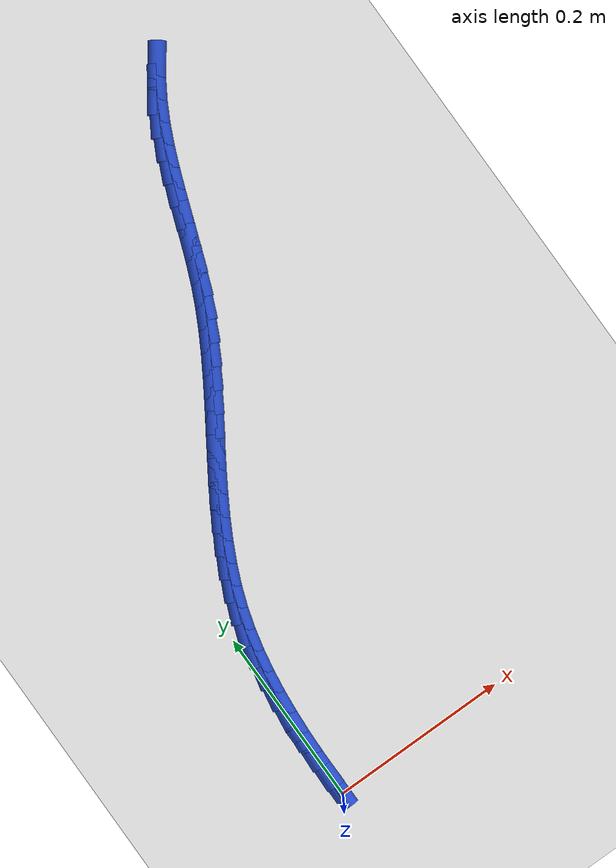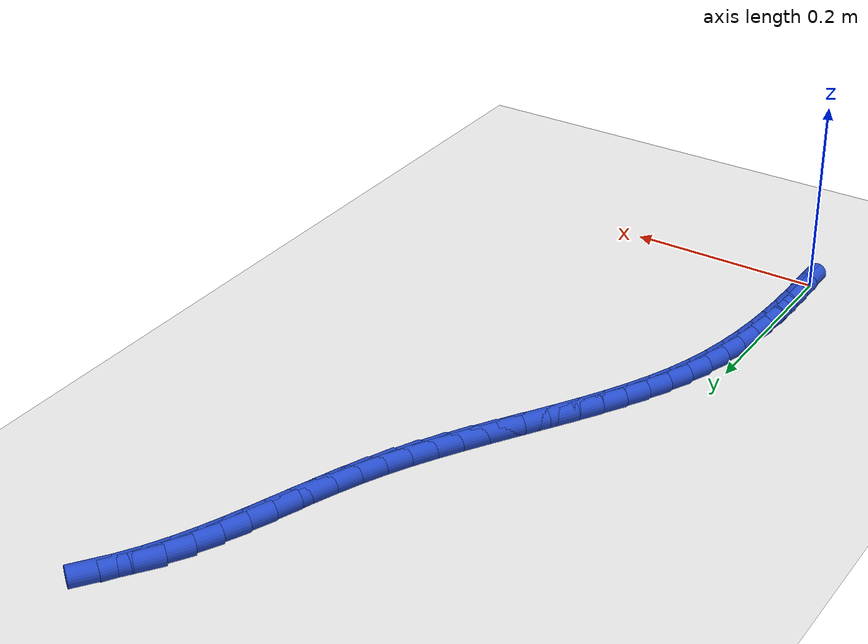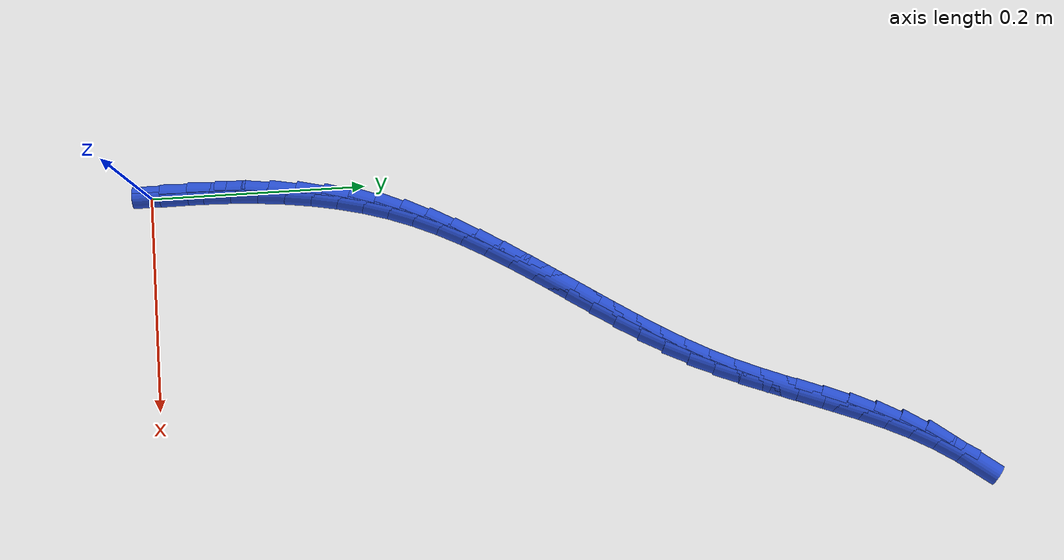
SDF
<sdf version="1.6">
 <world name="default">
  <model name="ground_plane">
   <static>1</static>
   <link name="link">
    <collision name="collision">
     <geometry><plane><normal>0 0 1</normal><size>100 100</size></plane></geometry>
     <surface><friction><ode><mu>100</mu><mu2>50</mu2></ode></friction></surface>
    </collision>
    <visual name="visual">
     <cast_shadows>0</cast_shadows>
     <geometry><plane><normal>0 0 1</normal><size>100 100</size></plane></geometry>
     <material>
      <script><uri>file://media/materials/scripts/gazebo.material</uri><name>Gazebo/WhiteGlow</name></script>
     </material>
    </visual>
   </link>
  </model>
  <model name="line">
   <link name="link_1">
    <pose>-0.00039559863322336566 0.025406013389314835 0.01 0 1.57 1.5662152106701432</pose>
    <collision name="collision">
     <geometry><cylinder><radius>0.01</radius><length>0.08</length></cylinder></geometry>
    </collision>
    <visual name="visual">
     <material>
      <script><name>Gazebo/Blue</name><uri>file://media/materials/scripts/gazebo.material</uri></script>
     </material>
     <geometry><cylinder><radius>0.01</radius><length>0.08</length></cylinder></geometry>
    </visual>
   </link>
   <link name="link_2">
    <pose>-0.0002790313549415987 0.050851005320326804 0.01 0 1.57 1.5414698510384934</pose>
    <collision name="collision">
     <geometry><cylinder><radius>0.01</radius><length>0.08</length></cylinder></geometry>
    </collision>
    <visual name="visual">
     <material>
      <script><name>Gazebo/Blue</name><uri>file://media/materials/scripts/gazebo.material</uri></script>
     </material>
     <geometry><cylinder><radius>0.01</radius><length>0.08</length></cylinder></geometry>
    </visual>
   </link>
   <link name="link_3">
    <pose>0.0004663814275333147 0.0762614597142718 0.01 0 1.57 1.5119396237090896</pose>
    <collision name="collision">
     <geometry><cylinder><radius>0.01</radius><length>0.08</length></cylinder></geometry>
    </collision>
    <visual name="visual">
     <material>
      <script><name>Gazebo/Blue</name><uri>file://media/materials/scripts/gazebo.material</uri></script>
     </material>
     <geometry><cylinder><radius>0.01</radius><length>0.08</length></cylinder></geometry>
    </visual>
   </link>
   <link name="link_4">
    <pose>0.0019573193068893966 0.10156386049238565 0.01 0 1.57 1.4773959164064112</pose>
    <collision name="collision">
     <geometry><cylinder><radius>0.01</radius><length>0.08</length></cylinder></geometry>
    </collision>
    <visual name="visual">
     <material>
      <script><name>Gazebo/Blue</name><uri>file://media/materials/scripts/gazebo.material</uri></script>
     </material>
     <geometry><cylinder><radius>0.01</radius><length>0.08</length></cylinder></geometry>
    </visual>
   </link>
   <link name="link_5">
    <pose>0.004310461875814669 0.12668469157590423 0.01 0 1.57 1.4375891591531478</pose>
    <collision name="collision">
     <geometry><cylinder><radius>0.01</radius><length>0.08</length></cylinder></geometry>
    </collision>
    <visual name="visual">
     <material>
      <script><name>Gazebo/Blue</name><uri>file://media/materials/scripts/gazebo.material</uri></script>
     </material>
     <geometry><cylinder><radius>0.01</radius><length>0.08</length></cylinder></geometry>
    </visual>
   </link>
   <link name="link_6">
    <pose>0.007642488726997158 0.15155043688606346 0.01 0 1.57 1.3922729450589235</pose>
    <collision name="collision">
     <geometry><cylinder><radius>0.01</radius><length>0.08</length></cylinder></geometry>
    </collision>
    <visual name="visual">
     <material>
      <script><name>Gazebo/Blue</name><uri>file://media/materials/scripts/gazebo.material</uri></script>
     </material>
     <geometry><cylinder><radius>0.01</radius><length>0.08</length></cylinder></geometry>
    </visual>
   </link>
   <link name="link_7">
    <pose>0.012070079453124882 0.176087580344099 0.01 0 1.57 1.3412371670263747</pose>
    <collision name="collision">
     <geometry><cylinder><radius>0.01</radius><length>0.08</length></cylinder></geometry>
    </collision>
    <visual name="visual">
     <material>
      <script><name>Gazebo/Blue</name><uri>file://media/materials/scripts/gazebo.material</uri></script>
     </material>
     <geometry><cylinder><radius>0.01</radius><length>0.08</length></cylinder></geometry>
    </visual>
   </link>
   <link name="link_8">
    <pose>0.017709913646885865 0.20022260587124688 0.01 0 1.57 1.2843515333578464</pose>
    <collision name="collision">
     <geometry><cylinder><radius>0.01</radius><length>0.08</length></cylinder></geometry>
    </collision>
    <visual name="visual">
     <material>
      <script><name>Gazebo/Blue</name><uri>file://media/materials/scripts/gazebo.material</uri></script>
     </material>
     <geometry><cylinder><radius>0.01</radius><length>0.08</length></cylinder></geometry>
    </visual>
   </link>
   <link name="link_9">
    <pose>0.02467867090096813 0.22388199738874281 0.01 0 1.57 1.2224601569509148</pose>
    <collision name="collision">
     <geometry><cylinder><radius>0.01</radius><length>0.08</length></cylinder></geometry>
    </collision>
    <visual name="visual">
     <material>
      <script><name>Gazebo/Blue</name><uri>file://media/materials/scripts/gazebo.material</uri></script>
     </material>
     <geometry><cylinder><radius>0.01</radius><length>0.08</length></cylinder></geometry>
    </visual>
   </link>
   <link name="link_10">
    <pose>0.033074374116202405 0.2470014780758318 0.01 0 1.57 1.1641607453258709</pose>
    <collision name="collision">
     <geometry><cylinder><radius>0.01</radius><length>0.08</length></cylinder></geometry>
    </collision>
    <visual name="visual">
     <material>
      <script><name>Gazebo/Blue</name><uri>file://media/materials/scripts/gazebo.material</uri></script>
     </material>
     <geometry><cylinder><radius>0.01</radius><length>0.08</length></cylinder></geometry>
    </visual>
   </link>
   <link name="link_11">
    <pose>0.04280979974318491 0.2696085097630729 0.01 0 1.57 1.1145856331024313</pose>
    <collision name="collision">
     <geometry><cylinder><radius>0.01</radius><length>0.08</length></cylinder></geometry>
    </collision>
    <visual name="visual">
     <material>
      <script><name>Gazebo/Blue</name><uri>file://media/materials/scripts/gazebo.material</uri></script>
     </material>
     <geometry><cylinder><radius>0.01</radius><length>0.08</length></cylinder></geometry>
    </visual>
   </link>
   <link name="link_12">
    <pose>0.053691697592667384 0.29178306131114834 0.01 0 1.57 1.0739037733721666</pose>
    <collision name="collision">
     <geometry><cylinder><radius>0.01</radius><length>0.08</length></cylinder></geometry>
    </collision>
    <visual name="visual">
     <material>
      <script><name>Gazebo/Blue</name><uri>file://media/materials/scripts/gazebo.material</uri></script>
     </material>
     <geometry><cylinder><radius>0.01</radius><length>0.08</length></cylinder></geometry>
    </visual>
   </link>
   <link name="link_13">
    <pose>0.06552556822395375 0.31360572024114053 0.01 0 1.57 1.0420394070131143</pose>
    <collision name="collision">
     <geometry><cylinder><radius>0.01</radius><length>0.08</length></cylinder></geometry>
    </collision>
    <visual name="visual">
     <material>
      <script><name>Gazebo/Blue</name><uri>file://media/materials/scripts/gazebo.material</uri></script>
     </material>
     <geometry><cylinder><radius>0.01</radius><length>0.08</length></cylinder></geometry>
    </visual>
   </link>
   <link name="link_14">
    <pose>0.07811691219634795 0.33515707407413164 0.01 0 1.57 1.0188252432628633</pose>
    <collision name="collision">
     <geometry><cylinder><radius>0.01</radius><length>0.08</length></cylinder></geometry>
    </collision>
    <visual name="visual">
     <material>
      <script><name>Gazebo/Blue</name><uri>file://media/materials/scripts/gazebo.material</uri></script>
     </material>
     <geometry><cylinder><radius>0.01</radius><length>0.08</length></cylinder></geometry>
    </visual>
   </link>
   <link name="link_15">
    <pose>0.0912712300691538 0.356517710331204 0.01 0 1.57 1.0040757195873862</pose>
    <collision name="collision">
     <geometry><cylinder><radius>0.01</radius><length>0.08</length></cylinder></geometry>
    </collision>
    <visual name="visual">
     <material>
      <script><name>Gazebo/Blue</name><uri>file://media/materials/scripts/gazebo.material</uri></script>
     </material>
     <geometry><cylinder><radius>0.01</radius><length>0.08</length></cylinder></geometry>
    </visual>
   </link>
   <link name="link_16">
    <pose>0.10479402240167532 0.37776821653343984 0.01 0 1.57 0.997636454147591</pose>
    <collision name="collision">
     <geometry><cylinder><radius>0.01</radius><length>0.08</length></cylinder></geometry>
    </collision>
    <visual name="visual">
     <material>
      <script><name>Gazebo/Blue</name><uri>file://media/materials/scripts/gazebo.material</uri></script>
     </material>
     <geometry><cylinder><radius>0.01</radius><length>0.08</length></cylinder></geometry>
    </visual>
   </link>
   <link name="link_17">
    <pose>0.11849078975321639 0.3989891802019214 0.01 0 1.57 0.9994129372983057</pose>
    <collision name="collision">
     <geometry><cylinder><radius>0.01</radius><length>0.08</length></cylinder></geometry>
    </collision>
    <visual name="visual">
     <material>
      <script><name>Gazebo/Blue</name><uri>file://media/materials/scripts/gazebo.material</uri></script>
     </material>
     <geometry><cylinder><radius>0.01</radius><length>0.08</length></cylinder></geometry>
    </visual>
   </link>
   <link name="link_18">
    <pose>0.1321670326830809 0.420261188857731 0.01 0 1.57 1.0093817251739032</pose>
    <collision name="collision">
     <geometry><cylinder><radius>0.01</radius><length>0.08</length></cylinder></geometry>
    </collision>
    <visual name="visual">
     <material>
      <script><name>Gazebo/Blue</name><uri>file://media/materials/scripts/gazebo.material</uri></script>
     </material>
     <geometry><cylinder><radius>0.01</radius><length>0.08</length></cylinder></geometry>
    </visual>
   </link>
   <link name="link_19">
    <pose>0.1456282517505727 0.44166483002195084 0.01 0 1.57 1.02758607794205</pose>
    <collision name="collision">
     <geometry><cylinder><radius>0.01</radius><length>0.08</length></cylinder></geometry>
    </collision>
    <visual name="visual">
     <material>
      <script><name>Gazebo/Blue</name><uri>file://media/materials/scripts/gazebo.material</uri></script>
     </material>
     <geometry><cylinder><radius>0.01</radius><length>0.08</length></cylinder></geometry>
    </visual>
   </link>
   <link name="link_20">
    <pose>0.1586799475149958 0.46328069121566323 0.01 0 1.57 1.0541161708580578</pose>
    <collision name="collision">
     <geometry><cylinder><radius>0.01</radius><length>0.08</length></cylinder></geometry>
    </collision>
    <visual name="visual">
     <material>
      <script><name>Gazebo/Blue</name><uri>file://media/materials/scripts/gazebo.material</uri></script>
     </material>
     <geometry><cylinder><radius>0.01</radius><length>0.08</length></cylinder></geometry>
    </visual>
   </link>
   <link name="link_21">
    <pose>0.17112762053565417 0.4851893599599505 0.01 0 1.57 1.08907243411517</pose>
    <collision name="collision">
     <geometry><cylinder><radius>0.01</radius><length>0.08</length></cylinder></geometry>
    </collision>
    <visual name="visual">
     <material>
      <script><name>Gazebo/Blue</name><uri>file://media/materials/scripts/gazebo.material</uri></script>
     </material>
     <geometry><cylinder><radius>0.01</radius><length>0.08</length></cylinder></geometry>
    </visual>
   </link>
   <link name="link_22">
    <pose>0.1827767713718516 0.5074714237758948 0.01 0 1.57 1.1322343189053872</pose>
    <collision name="collision">
     <geometry><cylinder><radius>0.01</radius><length>0.08</length></cylinder></geometry>
    </collision>
    <visual name="visual">
     <material>
      <script><name>Gazebo/Blue</name><uri>file://media/materials/scripts/gazebo.material</uri></script>
     </material>
     <geometry><cylinder><radius>0.01</radius><length>0.08</length></cylinder></geometry>
    </visual>
   </link>
   <link name="link_23">
    <pose>0.1934391950599923 0.5302045901730246 0.01 0 1.57 1.174004672617836</pose>
    <collision name="collision">
     <geometry><cylinder><radius>0.01</radius><length>0.08</length></cylinder></geometry>
    </collision>
    <visual name="visual">
     <material>
      <script><name>Gazebo/Blue</name><uri>file://media/materials/scripts/gazebo.material</uri></script>
     </material>
     <geometry><cylinder><radius>0.01</radius><length>0.08</length></cylinder></geometry>
    </visual>
   </link>
   <link name="link_24">
    <pose>0.20314457343079437 0.5533668734734867 0.01 0 1.57 1.2025626904053925</pose>
    <collision name="collision">
     <geometry><cylinder><radius>0.01</radius><length>0.08</length></cylinder></geometry>
    </collision>
    <visual name="visual">
     <material>
      <script><name>Gazebo/Blue</name><uri>file://media/materials/scripts/gazebo.material</uri></script>
     </material>
     <geometry><cylinder><radius>0.01</radius><length>0.08</length></cylinder></geometry>
    </visual>
   </link>
   <link name="link_25">
    <pose>0.21219102912794563 0.5768134640331893 0.01 0 1.57 1.2172318615747506</pose>
    <collision name="collision">
     <geometry><cylinder><radius>0.01</radius><length>0.08</length></cylinder></geometry>
    </collision>
    <visual name="visual">
     <material>
      <script><name>Gazebo/Blue</name><uri>file://media/materials/scripts/gazebo.material</uri></script>
     </material>
     <geometry><cylinder><radius>0.01</radius><length>0.08</length></cylinder></geometry>
    </visual>
   </link>
   <link name="link_26">
    <pose>0.22089322826653096 0.6003919828122044 0.01 0 1.57 1.2180556096643336</pose>
    <collision name="collision">
     <geometry><cylinder><radius>0.01</radius><length>0.08</length></cylinder></geometry>
    </collision>
    <visual name="visual">
     <material>
      <script><name>Gazebo/Blue</name><uri>file://media/materials/scripts/gazebo.material</uri></script>
     </material>
     <geometry><cylinder><radius>0.01</radius><length>0.08</length></cylinder></geometry>
    </visual>
   </link>
   <link name="link_27">
    <pose>0.22956583696163546 0.6239500507706031 0.01 0 1.57 1.2049880267554038</pose>
    <collision name="collision">
     <geometry><cylinder><radius>0.01</radius><length>0.08</length></cylinder></geometry>
    </collision>
    <visual name="visual">
     <material>
      <script><name>Gazebo/Blue</name><uri>file://media/materials/scripts/gazebo.material</uri></script>
     </material>
     <geometry><cylinder><radius>0.01</radius><length>0.08</length></cylinder></geometry>
    </visual>
   </link>
   <link name="link_28">
    <pose>0.2385235213283441 0.6473352888684566 0.01 0 1.57 1.1778881572873734</pose>
    <collision name="collision">
     <geometry><cylinder><radius>0.01</radius><length>0.08</length></cylinder></geometry>
    </collision>
    <visual name="visual">
     <material>
      <script><name>Gazebo/Blue</name><uri>file://media/materials/scripts/gazebo.material</uri></script>
     </material>
     <geometry><cylinder><radius>0.01</radius><length>0.08</length></cylinder></geometry>
    </visual>
   </link>
   <link name="link_29">
    <pose>0.24808094748174184 0.6703953180658363 0.01 0 1.57 1.1365950900157202</pose>
    <collision name="collision">
     <geometry><cylinder><radius>0.01</radius><length>0.08</length></cylinder></geometry>
    </collision>
    <visual name="visual">
     <material>
      <script><name>Gazebo/Blue</name><uri>file://media/materials/scripts/gazebo.material</uri></script>
     </material>
     <geometry><cylinder><radius>0.01</radius><length>0.08</length></cylinder></geometry>
    </visual>
   </link>
   <link name="link_30">
    <pose>0.25855278153691374 0.6929777593228135 0.01 0 1.57 1.0810900635389604</pose>
    <collision name="collision">
     <geometry><cylinder><radius>0.01</radius><length>0.08</length></cylinder></geometry>
    </collision>
    <visual name="visual">
     <material>
      <script><name>Gazebo/Blue</name><uri>file://media/materials/scripts/gazebo.material</uri></script>
     </material>
     <geometry><cylinder><radius>0.01</radius><length>0.08</length></cylinder></geometry>
    </visual>
   </link>
   <link name="link_31">
    <pose>0.27025368960894464 0.7149302335994593 0.01 0 1.57 1.012183170149901</pose>
    <collision name="collision">
     <geometry><cylinder><radius>0.01</radius><length>0.08</length></cylinder></geometry>
    </collision>
    <visual name="visual">
     <material>
      <script><name>Gazebo/Blue</name><uri>file://media/materials/scripts/gazebo.material</uri></script>
     </material>
     <geometry><cylinder><radius>0.01</radius><length>0.08</length></cylinder></geometry>
    </visual>
   </link>
   <link name="link_32">
    <pose>0.28348590255878614 0.7361011223159138 0.01 0 1.57 0.9378428382641664</pose>
    <collision name="collision">
     <geometry><cylinder><radius>0.01</radius><length>0.08</length></cylinder></geometry>
    </collision>
    <visual name="visual">
     <material>
      <script><name>Gazebo/Blue</name><uri>file://media/materials/scripts/gazebo.material</uri></script>
     </material>
     <geometry><cylinder><radius>0.01</radius><length>0.08</length></cylinder></geometry>
    </visual>
   </link>
   <link name="link_271">
    <pose>-0.0004202874823451032 0.025418124170316365 0.01 0 1.57 -1.5685928372899753</pose>
    <collision name="collision">
     <geometry><cylinder><radius>0.01</radius><length>0.08</length></cylinder></geometry>
    </collision>
    <visual name="visual">
     <material>
      <script><name>Gazebo/Blue</name><uri>file://media/materials/scripts/gazebo.material</uri></script>
     </material>
     <geometry><cylinder><radius>0.01</radius><length>0.08</length></cylinder></geometry>
    </visual>
   </link>
   <link name="link_272">
    <pose>-0.00047654214791541423 0.05094789156833518 0.01 0 1.57 -1.5614430790611606</pose>
    <collision name="collision">
     <geometry><cylinder><radius>0.01</radius><length>0.08</length></cylinder></geometry>
    </collision>
    <visual name="visual">
     <material>
      <script><name>Gazebo/Blue</name><uri>file://media/materials/scripts/gazebo.material</uri></script>
     </material>
     <geometry><cylinder><radius>0.01</radius><length>0.08</length></cylinder></geometry>
    </visual>
   </link>
  </model>
 </world>
</sdf>
